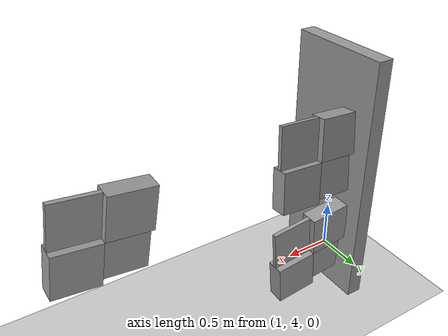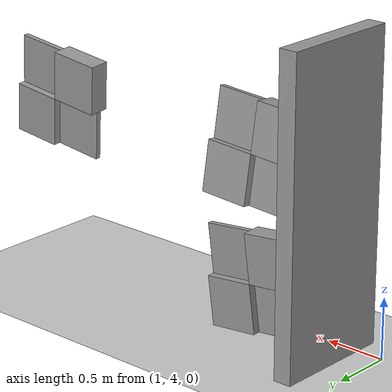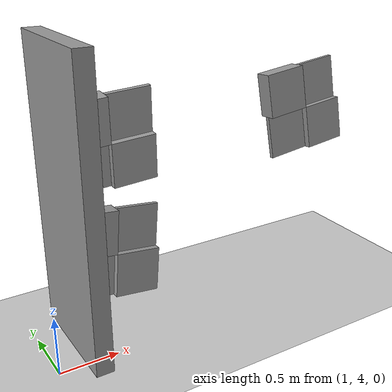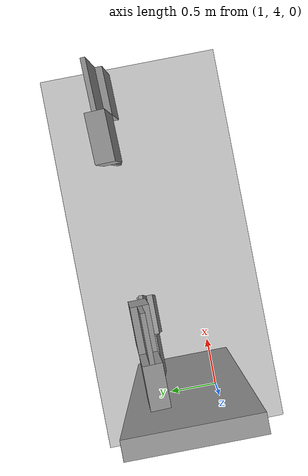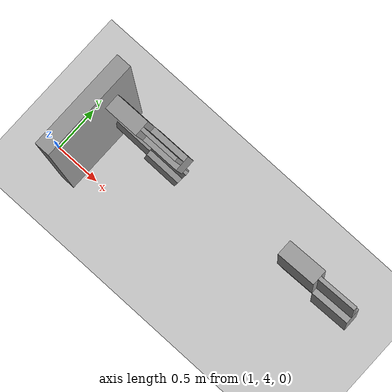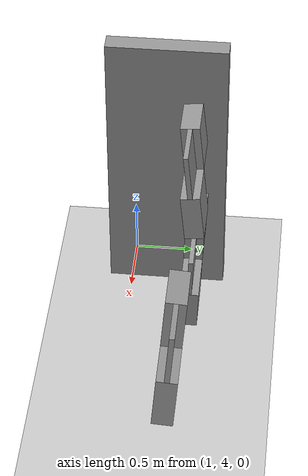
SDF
<sdf version="1.7">
 <world name="default">
  <model name="demo_clean">
   <static>1</static>
   <link name="Wall_25">
    <collision name="Wall_25_Collision">
     <geometry><box><size>1 0.15 2.5</size></box></geometry>
     <pose>0 0 1.25 0 -0 0</pose>
     <surface>
      <friction>
       <ode><mu>1</mu><mu2>1</mu2><fdir1>0 0 0</fdir1><slip1>0</slip1><slip2>0</slip2></ode>
       <torsional>
        <coefficient>1</coefficient>
        <patch_radius>0</patch_radius>
        <surface_radius>0</surface_radius>
        <use_patch_radius>1</use_patch_radius>
        <ode><slip>0</slip></ode>
       </torsional>
      </friction>
      <bounce><restitution_coefficient>0</restitution_coefficient><threshold>1e+06</threshold></bounce>
      <contact>
       <collide_without_contact>0</collide_without_contact>
       <collide_without_contact_bitmask>1</collide_without_contact_bitmask>
       <collide_bitmask>1</collide_bitmask>
       <ode>
        <soft_cfm>0</soft_cfm>
        <soft_erp>0.2</soft_erp>
        <kp>1e+13</kp>
        <kd>1</kd>
        <max_vel>0.01</max_vel>
        <min_depth>0</min_depth>
       </ode>
       <bullet>
        <split_impulse>1</split_impulse>
        <split_impulse_penetration_threshold>-0.01</split_impulse_penetration_threshold>
        <soft_cfm>0</soft_cfm>
        <soft_erp>0.2</soft_erp>
        <kp>1e+13</kp>
        <kd>1</kd>
       </bullet>
      </contact>
     </surface>
    </collision>
    <visual name="Wall_25_Visual">
     <geometry><box><size>1 0.15 2.5</size></box></geometry>
     <material>
      <script><name>Gazebo/Grey</name><uri>file://media/materials/scripts/gazebo.material</uri></script>
      <ambient>1 1 1 1</ambient>
      <shader type="pixel"><normal_map>default</normal_map></shader>
     </material>
     <pose>0 0 1.25 0 -0 0</pose>
    </visual>
    <pose>1.30015 4.30512 0 0 0 -1.5708</pose>
   </link>
  </model>
  <model name="ground_plane">
   <static>1</static>
   <link name="link">
    <collision name="collision">
     <geometry><plane><normal>0 0 1</normal><size>100 100</size></plane></geometry>
     <surface>
      <contact><collide_bitmask>65535</collide_bitmask></contact>
      <friction><ode><mu>100</mu><mu2>50</mu2></ode></friction>
     </surface>
    </collision>
    <visual name="visual">
     <cast_shadows>0</cast_shadows>
     <geometry><plane><normal>0 0 1</normal><size>100 100</size></plane></geometry>
     <material>
      <script><uri>file://media/materials/scripts/gazebo.material</uri><name>Gazebo/Grey</name></script>
     </material>
    </visual>
   </link>
  </model>
  <model name="wall_slate_51">
   <static>1</static>
   <link name="link_0">
    <inertial><mass>1</mass></inertial>
    <gravity>0</gravity>
    <visual name="visual">
     <pose>0 0.2 0.2 0 -0 0</pose>
     <geometry><box><size>0.16 0.4 0.4</size></box></geometry>
     <material>
      <lighting>1</lighting>
      <script><uri>file://media/materials/scripts/gazebo.material</uri><name>Gazebo/Grey</name></script>
      <shader type="pixel"><normal_map>__default__</normal_map></shader>
      <ambient>0.3 0.3 0.3 1</ambient>
      <diffuse>0.7 0.7 0.7 1</diffuse>
      <specular>0.01 0.01 0.01 1</specular>
      <emissive>0 0 0 1</emissive>
     </material>
    </visual>
    <visual name="ModelPreview_0::link_0::visual_1">
     <pose>0 0.2 -0.2 0 -0 0</pose>
     <geometry><box><size>0.04 0.4 0.4</size></box></geometry>
     <material>
      <lighting>1</lighting>
      <script><uri>file://media/materials/scripts/gazebo.material</uri><name>Gazebo/Grey</name></script>
      <shader type="pixel"><normal_map>__default__</normal_map></shader>
      <ambient>0.3 0.3 0.3 1</ambient>
      <diffuse>0.7 0.7 0.7 1</diffuse>
      <specular>0.01 0.01 0.01 1</specular>
      <emissive>0 0 0 1</emissive>
     </material>
    </visual>
    <visual name="ModelPreview_0::link_0::visual_2">
     <pose>0 -0.2 0.2 0 -0 0</pose>
     <geometry><box><size>0.04 0.4 0.4</size></box></geometry>
     <material>
      <lighting>1</lighting>
      <script><uri>file://media/materials/scripts/gazebo.material</uri><name>Gazebo/Grey</name></script>
      <shader type="pixel"><normal_map>__default__</normal_map></shader>
      <ambient>0.3 0.3 0.3 1</ambient>
      <diffuse>0.7 0.7 0.7 1</diffuse>
      <specular>0.01 0.01 0.01 1</specular>
      <emissive>0 0 0 1</emissive>
     </material>
    </visual>
    <visual name="ModelPreview_0::link_0::visual_3">
     <pose>0 -0.2 -0.2 0 -0 0</pose>
     <geometry><box><size>0.16 0.4 0.4</size></box></geometry>
     <material>
      <lighting>1</lighting>
      <script><uri>file://media/materials/scripts/gazebo.material</uri><name>Gazebo/Grey</name></script>
      <shader type="pixel"><normal_map>__default__</normal_map></shader>
      <ambient>0.3 0.3 0.3 1</ambient>
      <diffuse>0.7 0.7 0.7 1</diffuse>
      <specular>0.01 0.01 0.01 1</specular>
      <emissive>0 0 0 1</emissive>
     </material>
    </visual>
    <collision name="collision_2">
     <pose>0 -0.2 0.2 0 -0 0</pose>
     <geometry><box><size>0.04 0.4 0.4</size></box></geometry>
     <surface>
      <friction>
       <ode><mu>1</mu><mu2>1</mu2><fdir1>0 0 0</fdir1><slip1>0</slip1><slip2>0</slip2></ode>
       <torsional>
        <coefficient>1</coefficient>
        <patch_radius>0</patch_radius>
        <surface_radius>0</surface_radius>
        <use_patch_radius>1</use_patch_radius>
        <ode><slip>0</slip></ode>
       </torsional>
      </friction>
      <bounce><restitution_coefficient>0</restitution_coefficient><threshold>1e+06</threshold></bounce>
      <contact>
       <collide_without_contact>0</collide_without_contact>
       <collide_without_contact_bitmask>1</collide_without_contact_bitmask>
       <collide_bitmask>1</collide_bitmask>
       <ode>
        <soft_cfm>0</soft_cfm>
        <soft_erp>0.2</soft_erp>
        <kp>1e+13</kp>
        <kd>1</kd>
        <max_vel>0.01</max_vel>
        <min_depth>0</min_depth>
       </ode>
       <bullet>
        <split_impulse>1</split_impulse>
        <split_impulse_penetration_threshold>-0.01</split_impulse_penetration_threshold>
        <soft_cfm>0</soft_cfm>
        <soft_erp>0.2</soft_erp>
        <kp>1e+13</kp>
        <kd>1</kd>
       </bullet>
      </contact>
     </surface>
    </collision>
    <collision name="collision_1">
     <pose>0 0.2 -0.2 0 -0 0</pose>
     <geometry><box><size>0.04 0.4 0.4</size></box></geometry>
     <surface>
      <friction>
       <ode><mu>1</mu><mu2>1</mu2><fdir1>0 0 0</fdir1><slip1>0</slip1><slip2>0</slip2></ode>
       <torsional>
        <coefficient>1</coefficient>
        <patch_radius>0</patch_radius>
        <surface_radius>0</surface_radius>
        <use_patch_radius>1</use_patch_radius>
        <ode><slip>0</slip></ode>
       </torsional>
      </friction>
      <bounce><restitution_coefficient>0</restitution_coefficient><threshold>1e+06</threshold></bounce>
      <contact>
       <collide_without_contact>0</collide_without_contact>
       <collide_without_contact_bitmask>1</collide_without_contact_bitmask>
       <collide_bitmask>1</collide_bitmask>
       <ode>
        <soft_cfm>0</soft_cfm>
        <soft_erp>0.2</soft_erp>
        <kp>1e+13</kp>
        <kd>1</kd>
        <max_vel>0.01</max_vel>
        <min_depth>0</min_depth>
       </ode>
       <bullet>
        <split_impulse>1</split_impulse>
        <split_impulse_penetration_threshold>-0.01</split_impulse_penetration_threshold>
        <soft_cfm>0</soft_cfm>
        <soft_erp>0.2</soft_erp>
        <kp>1e+13</kp>
        <kd>1</kd>
       </bullet>
      </contact>
     </surface>
    </collision>
    <collision name="collision_4">
     <pose>0 0.2 0.2 0 -0 0</pose>
     <geometry><box><size>0.16 0.4 0.4</size></box></geometry>
     <surface>
      <friction>
       <ode><mu>1</mu><mu2>1</mu2><fdir1>0 0 0</fdir1><slip1>0</slip1><slip2>0</slip2></ode>
       <torsional>
        <coefficient>1</coefficient>
        <patch_radius>0</patch_radius>
        <surface_radius>0</surface_radius>
        <use_patch_radius>1</use_patch_radius>
        <ode><slip>0</slip></ode>
       </torsional>
      </friction>
      <bounce><restitution_coefficient>0</restitution_coefficient><threshold>1e+06</threshold></bounce>
      <contact>
       <collide_without_contact>0</collide_without_contact>
       <collide_without_contact_bitmask>1</collide_without_contact_bitmask>
       <collide_bitmask>1</collide_bitmask>
       <ode>
        <soft_cfm>0</soft_cfm>
        <soft_erp>0.2</soft_erp>
        <kp>1e+13</kp>
        <kd>1</kd>
        <max_vel>0.01</max_vel>
        <min_depth>0</min_depth>
       </ode>
       <bullet>
        <split_impulse>1</split_impulse>
        <split_impulse_penetration_threshold>-0.01</split_impulse_penetration_threshold>
        <soft_cfm>0</soft_cfm>
        <soft_erp>0.2</soft_erp>
        <kp>1e+13</kp>
        <kd>1</kd>
       </bullet>
      </contact>
     </surface>
    </collision>
    <collision name="collision_3">
     <pose>0 -0.2 -0.2 0 -0 0</pose>
     <geometry><box><size>0.16 0.4 0.4</size></box></geometry>
     <surface>
      <friction>
       <ode><mu>1</mu><mu2>1</mu2><fdir1>0 0 0</fdir1><slip1>0</slip1><slip2>0</slip2></ode>
       <torsional>
        <coefficient>1</coefficient>
        <patch_radius>0</patch_radius>
        <surface_radius>0</surface_radius>
        <use_patch_radius>1</use_patch_radius>
        <ode><slip>0</slip></ode>
       </torsional>
      </friction>
      <bounce><restitution_coefficient>0</restitution_coefficient><threshold>1e+06</threshold></bounce>
      <contact>
       <collide_without_contact>0</collide_without_contact>
       <collide_without_contact_bitmask>1</collide_without_contact_bitmask>
       <collide_bitmask>1</collide_bitmask>
       <ode>
        <soft_cfm>0</soft_cfm>
        <soft_erp>0.2</soft_erp>
        <kp>1e+13</kp>
        <kd>1</kd>
        <max_vel>0.01</max_vel>
        <min_depth>0</min_depth>
       </ode>
       <bullet>
        <split_impulse>1</split_impulse>
        <split_impulse_penetration_threshold>-0.01</split_impulse_penetration_threshold>
        <soft_cfm>0</soft_cfm>
        <soft_erp>0.2</soft_erp>
        <kp>1e+13</kp>
        <kd>1</kd>
       </bullet>
      </contact>
     </surface>
    </collision>
   </link>
   <pose>3.75351 4.56618 1.6 -0.12 0.08 1.5757</pose>
  </model>
  <model name="wall_slate_89">
   <static>1</static>
   <link name="link_0">
    <inertial><mass>1</mass></inertial>
    <gravity>0</gravity>
    <visual name="visual">
     <pose>0 0.2 0.2 0 -0 0</pose>
     <geometry><box><size>0.16 0.4 0.4</size></box></geometry>
     <material>
      <lighting>1</lighting>
      <script><uri>file://media/materials/scripts/gazebo.material</uri><name>Gazebo/Grey</name></script>
      <shader type="pixel"><normal_map>__default__</normal_map></shader>
      <ambient>0.3 0.3 0.3 1</ambient>
      <diffuse>0.7 0.7 0.7 1</diffuse>
      <specular>0.01 0.01 0.01 1</specular>
      <emissive>0 0 0 1</emissive>
     </material>
    </visual>
    <visual name="ModelPreview_0::link_0::visual_1">
     <pose>0 0.2 -0.2 0 -0 0</pose>
     <geometry><box><size>0.04 0.4 0.4</size></box></geometry>
     <material>
      <lighting>1</lighting>
      <script><uri>file://media/materials/scripts/gazebo.material</uri><name>Gazebo/Grey</name></script>
      <shader type="pixel"><normal_map>__default__</normal_map></shader>
      <ambient>0.3 0.3 0.3 1</ambient>
      <diffuse>0.7 0.7 0.7 1</diffuse>
      <specular>0.01 0.01 0.01 1</specular>
      <emissive>0 0 0 1</emissive>
     </material>
    </visual>
    <visual name="ModelPreview_0::link_0::visual_2">
     <pose>0 -0.2 0.2 0 -0 0</pose>
     <geometry><box><size>0.04 0.4 0.4</size></box></geometry>
     <material>
      <lighting>1</lighting>
      <script><uri>file://media/materials/scripts/gazebo.material</uri><name>Gazebo/Grey</name></script>
      <shader type="pixel"><normal_map>__default__</normal_map></shader>
      <ambient>0.3 0.3 0.3 1</ambient>
      <diffuse>0.7 0.7 0.7 1</diffuse>
      <specular>0.01 0.01 0.01 1</specular>
      <emissive>0 0 0 1</emissive>
     </material>
    </visual>
    <visual name="ModelPreview_0::link_0::visual_3">
     <pose>0 -0.2 -0.2 0 -0 0</pose>
     <geometry><box><size>0.16 0.4 0.4</size></box></geometry>
     <material>
      <lighting>1</lighting>
      <script><uri>file://media/materials/scripts/gazebo.material</uri><name>Gazebo/Grey</name></script>
      <shader type="pixel"><normal_map>__default__</normal_map></shader>
      <ambient>0.3 0.3 0.3 1</ambient>
      <diffuse>0.7 0.7 0.7 1</diffuse>
      <specular>0.01 0.01 0.01 1</specular>
      <emissive>0 0 0 1</emissive>
     </material>
    </visual>
    <collision name="collision_2">
     <pose>0 -0.2 0.2 0 -0 0</pose>
     <geometry><box><size>0.04 0.4 0.4</size></box></geometry>
     <surface>
      <friction>
       <ode><mu>1</mu><mu2>1</mu2><fdir1>0 0 0</fdir1><slip1>0</slip1><slip2>0</slip2></ode>
       <torsional>
        <coefficient>1</coefficient>
        <patch_radius>0</patch_radius>
        <surface_radius>0</surface_radius>
        <use_patch_radius>1</use_patch_radius>
        <ode><slip>0</slip></ode>
       </torsional>
      </friction>
      <bounce><restitution_coefficient>0</restitution_coefficient><threshold>1e+06</threshold></bounce>
      <contact>
       <collide_without_contact>0</collide_without_contact>
       <collide_without_contact_bitmask>1</collide_without_contact_bitmask>
       <collide_bitmask>1</collide_bitmask>
       <ode>
        <soft_cfm>0</soft_cfm>
        <soft_erp>0.2</soft_erp>
        <kp>1e+13</kp>
        <kd>1</kd>
        <max_vel>0.01</max_vel>
        <min_depth>0</min_depth>
       </ode>
       <bullet>
        <split_impulse>1</split_impulse>
        <split_impulse_penetration_threshold>-0.01</split_impulse_penetration_threshold>
        <soft_cfm>0</soft_cfm>
        <soft_erp>0.2</soft_erp>
        <kp>1e+13</kp>
        <kd>1</kd>
       </bullet>
      </contact>
     </surface>
    </collision>
    <collision name="collision_1">
     <pose>0 0.2 -0.2 0 -0 0</pose>
     <geometry><box><size>0.04 0.4 0.4</size></box></geometry>
     <surface>
      <friction>
       <ode><mu>1</mu><mu2>1</mu2><fdir1>0 0 0</fdir1><slip1>0</slip1><slip2>0</slip2></ode>
       <torsional>
        <coefficient>1</coefficient>
        <patch_radius>0</patch_radius>
        <surface_radius>0</surface_radius>
        <use_patch_radius>1</use_patch_radius>
        <ode><slip>0</slip></ode>
       </torsional>
      </friction>
      <bounce><restitution_coefficient>0</restitution_coefficient><threshold>1e+06</threshold></bounce>
      <contact>
       <collide_without_contact>0</collide_without_contact>
       <collide_without_contact_bitmask>1</collide_without_contact_bitmask>
       <collide_bitmask>1</collide_bitmask>
       <ode>
        <soft_cfm>0</soft_cfm>
        <soft_erp>0.2</soft_erp>
        <kp>1e+13</kp>
        <kd>1</kd>
        <max_vel>0.01</max_vel>
        <min_depth>0</min_depth>
       </ode>
       <bullet>
        <split_impulse>1</split_impulse>
        <split_impulse_penetration_threshold>-0.01</split_impulse_penetration_threshold>
        <soft_cfm>0</soft_cfm>
        <soft_erp>0.2</soft_erp>
        <kp>1e+13</kp>
        <kd>1</kd>
       </bullet>
      </contact>
     </surface>
    </collision>
    <collision name="collision_4">
     <pose>0 0.2 0.2 0 -0 0</pose>
     <geometry><box><size>0.16 0.4 0.4</size></box></geometry>
     <surface>
      <friction>
       <ode><mu>1</mu><mu2>1</mu2><fdir1>0 0 0</fdir1><slip1>0</slip1><slip2>0</slip2></ode>
       <torsional>
        <coefficient>1</coefficient>
        <patch_radius>0</patch_radius>
        <surface_radius>0</surface_radius>
        <use_patch_radius>1</use_patch_radius>
        <ode><slip>0</slip></ode>
       </torsional>
      </friction>
      <bounce><restitution_coefficient>0</restitution_coefficient><threshold>1e+06</threshold></bounce>
      <contact>
       <collide_without_contact>0</collide_without_contact>
       <collide_without_contact_bitmask>1</collide_without_contact_bitmask>
       <collide_bitmask>1</collide_bitmask>
       <ode>
        <soft_cfm>0</soft_cfm>
        <soft_erp>0.2</soft_erp>
        <kp>1e+13</kp>
        <kd>1</kd>
        <max_vel>0.01</max_vel>
        <min_depth>0</min_depth>
       </ode>
       <bullet>
        <split_impulse>1</split_impulse>
        <split_impulse_penetration_threshold>-0.01</split_impulse_penetration_threshold>
        <soft_cfm>0</soft_cfm>
        <soft_erp>0.2</soft_erp>
        <kp>1e+13</kp>
        <kd>1</kd>
       </bullet>
      </contact>
     </surface>
    </collision>
    <collision name="collision_3">
     <pose>0 -0.2 -0.2 0 -0 0</pose>
     <geometry><box><size>0.16 0.4 0.4</size></box></geometry>
     <surface>
      <friction>
       <ode><mu>1</mu><mu2>1</mu2><fdir1>0 0 0</fdir1><slip1>0</slip1><slip2>0</slip2></ode>
       <torsional>
        <coefficient>1</coefficient>
        <patch_radius>0</patch_radius>
        <surface_radius>0</surface_radius>
        <use_patch_radius>1</use_patch_radius>
        <ode><slip>0</slip></ode>
       </torsional>
      </friction>
      <bounce><restitution_coefficient>0</restitution_coefficient><threshold>1e+06</threshold></bounce>
      <contact>
       <collide_without_contact>0</collide_without_contact>
       <collide_without_contact_bitmask>1</collide_without_contact_bitmask>
       <collide_bitmask>1</collide_bitmask>
       <ode>
        <soft_cfm>0</soft_cfm>
        <soft_erp>0.2</soft_erp>
        <kp>1e+13</kp>
        <kd>1</kd>
        <max_vel>0.01</max_vel>
        <min_depth>0</min_depth>
       </ode>
       <bullet>
        <split_impulse>1</split_impulse>
        <split_impulse_penetration_threshold>-0.01</split_impulse_penetration_threshold>
        <soft_cfm>0</soft_cfm>
        <soft_erp>0.2</soft_erp>
        <kp>1e+13</kp>
        <kd>1</kd>
       </bullet>
      </contact>
     </surface>
    </collision>
   </link>
   <pose>1.75351 4.56618 1.6 -0.06 -0.1 1.5757</pose>
  </model>
  <model name="wall_slate_90">
   <static>1</static>
   <link name="link_0">
    <inertial><mass>1</mass></inertial>
    <gravity>0</gravity>
    <visual name="visual">
     <pose>0 0.2 0.2 0 -0 0</pose>
     <geometry><box><size>0.16 0.4 0.4</size></box></geometry>
     <material>
      <lighting>1</lighting>
      <script><uri>file://media/materials/scripts/gazebo.material</uri><name>Gazebo/Grey</name></script>
      <shader type="pixel"><normal_map>__default__</normal_map></shader>
      <ambient>0.3 0.3 0.3 1</ambient>
      <diffuse>0.7 0.7 0.7 1</diffuse>
      <specular>0.01 0.01 0.01 1</specular>
      <emissive>0 0 0 1</emissive>
     </material>
    </visual>
    <visual name="ModelPreview_0::link_0::visual_1">
     <pose>0 0.2 -0.2 0 -0 0</pose>
     <geometry><box><size>0.04 0.4 0.4</size></box></geometry>
     <material>
      <lighting>1</lighting>
      <script><uri>file://media/materials/scripts/gazebo.material</uri><name>Gazebo/Grey</name></script>
      <shader type="pixel"><normal_map>__default__</normal_map></shader>
      <ambient>0.3 0.3 0.3 1</ambient>
      <diffuse>0.7 0.7 0.7 1</diffuse>
      <specular>0.01 0.01 0.01 1</specular>
      <emissive>0 0 0 1</emissive>
     </material>
    </visual>
    <visual name="ModelPreview_0::link_0::visual_2">
     <pose>0 -0.2 0.2 0 -0 0</pose>
     <geometry><box><size>0.04 0.4 0.4</size></box></geometry>
     <material>
      <lighting>1</lighting>
      <script><uri>file://media/materials/scripts/gazebo.material</uri><name>Gazebo/Grey</name></script>
      <shader type="pixel"><normal_map>__default__</normal_map></shader>
      <ambient>0.3 0.3 0.3 1</ambient>
      <diffuse>0.7 0.7 0.7 1</diffuse>
      <specular>0.01 0.01 0.01 1</specular>
      <emissive>0 0 0 1</emissive>
     </material>
    </visual>
    <visual name="ModelPreview_0::link_0::visual_3">
     <pose>0 -0.2 -0.2 0 -0 0</pose>
     <geometry><box><size>0.16 0.4 0.4</size></box></geometry>
     <material>
      <lighting>1</lighting>
      <script><uri>file://media/materials/scripts/gazebo.material</uri><name>Gazebo/Grey</name></script>
      <shader type="pixel"><normal_map>__default__</normal_map></shader>
      <ambient>0.3 0.3 0.3 1</ambient>
      <diffuse>0.7 0.7 0.7 1</diffuse>
      <specular>0.01 0.01 0.01 1</specular>
      <emissive>0 0 0 1</emissive>
     </material>
    </visual>
    <collision name="collision_2">
     <pose>0 -0.2 0.2 0 -0 0</pose>
     <geometry><box><size>0.04 0.4 0.4</size></box></geometry>
     <surface>
      <friction>
       <ode><mu>1</mu><mu2>1</mu2><fdir1>0 0 0</fdir1><slip1>0</slip1><slip2>0</slip2></ode>
       <torsional>
        <coefficient>1</coefficient>
        <patch_radius>0</patch_radius>
        <surface_radius>0</surface_radius>
        <use_patch_radius>1</use_patch_radius>
        <ode><slip>0</slip></ode>
       </torsional>
      </friction>
      <bounce><restitution_coefficient>0</restitution_coefficient><threshold>1e+06</threshold></bounce>
      <contact>
       <collide_without_contact>0</collide_without_contact>
       <collide_without_contact_bitmask>1</collide_without_contact_bitmask>
       <collide_bitmask>1</collide_bitmask>
       <ode>
        <soft_cfm>0</soft_cfm>
        <soft_erp>0.2</soft_erp>
        <kp>1e+13</kp>
        <kd>1</kd>
        <max_vel>0.01</max_vel>
        <min_depth>0</min_depth>
       </ode>
       <bullet>
        <split_impulse>1</split_impulse>
        <split_impulse_penetration_threshold>-0.01</split_impulse_penetration_threshold>
        <soft_cfm>0</soft_cfm>
        <soft_erp>0.2</soft_erp>
        <kp>1e+13</kp>
        <kd>1</kd>
       </bullet>
      </contact>
     </surface>
    </collision>
    <collision name="collision_1">
     <pose>0 0.2 -0.2 0 -0 0</pose>
     <geometry><box><size>0.04 0.4 0.4</size></box></geometry>
     <surface>
      <friction>
       <ode><mu>1</mu><mu2>1</mu2><fdir1>0 0 0</fdir1><slip1>0</slip1><slip2>0</slip2></ode>
       <torsional>
        <coefficient>1</coefficient>
        <patch_radius>0</patch_radius>
        <surface_radius>0</surface_radius>
        <use_patch_radius>1</use_patch_radius>
        <ode><slip>0</slip></ode>
       </torsional>
      </friction>
      <bounce><restitution_coefficient>0</restitution_coefficient><threshold>1e+06</threshold></bounce>
      <contact>
       <collide_without_contact>0</collide_without_contact>
       <collide_without_contact_bitmask>1</collide_without_contact_bitmask>
       <collide_bitmask>1</collide_bitmask>
       <ode>
        <soft_cfm>0</soft_cfm>
        <soft_erp>0.2</soft_erp>
        <kp>1e+13</kp>
        <kd>1</kd>
        <max_vel>0.01</max_vel>
        <min_depth>0</min_depth>
       </ode>
       <bullet>
        <split_impulse>1</split_impulse>
        <split_impulse_penetration_threshold>-0.01</split_impulse_penetration_threshold>
        <soft_cfm>0</soft_cfm>
        <soft_erp>0.2</soft_erp>
        <kp>1e+13</kp>
        <kd>1</kd>
       </bullet>
      </contact>
     </surface>
    </collision>
    <collision name="collision_4">
     <pose>0 0.2 0.2 0 -0 0</pose>
     <geometry><box><size>0.16 0.4 0.4</size></box></geometry>
     <surface>
      <friction>
       <ode><mu>1</mu><mu2>1</mu2><fdir1>0 0 0</fdir1><slip1>0</slip1><slip2>0</slip2></ode>
       <torsional>
        <coefficient>1</coefficient>
        <patch_radius>0</patch_radius>
        <surface_radius>0</surface_radius>
        <use_patch_radius>1</use_patch_radius>
        <ode><slip>0</slip></ode>
       </torsional>
      </friction>
      <bounce><restitution_coefficient>0</restitution_coefficient><threshold>1e+06</threshold></bounce>
      <contact>
       <collide_without_contact>0</collide_without_contact>
       <collide_without_contact_bitmask>1</collide_without_contact_bitmask>
       <collide_bitmask>1</collide_bitmask>
       <ode>
        <soft_cfm>0</soft_cfm>
        <soft_erp>0.2</soft_erp>
        <kp>1e+13</kp>
        <kd>1</kd>
        <max_vel>0.01</max_vel>
        <min_depth>0</min_depth>
       </ode>
       <bullet>
        <split_impulse>1</split_impulse>
        <split_impulse_penetration_threshold>-0.01</split_impulse_penetration_threshold>
        <soft_cfm>0</soft_cfm>
        <soft_erp>0.2</soft_erp>
        <kp>1e+13</kp>
        <kd>1</kd>
       </bullet>
      </contact>
     </surface>
    </collision>
    <collision name="collision_3">
     <pose>0 -0.2 -0.2 0 -0 0</pose>
     <geometry><box><size>0.16 0.4 0.4</size></box></geometry>
     <surface>
      <friction>
       <ode><mu>1</mu><mu2>1</mu2><fdir1>0 0 0</fdir1><slip1>0</slip1><slip2>0</slip2></ode>
       <torsional>
        <coefficient>1</coefficient>
        <patch_radius>0</patch_radius>
        <surface_radius>0</surface_radius>
        <use_patch_radius>1</use_patch_radius>
        <ode><slip>0</slip></ode>
       </torsional>
      </friction>
      <bounce><restitution_coefficient>0</restitution_coefficient><threshold>1e+06</threshold></bounce>
      <contact>
       <collide_without_contact>0</collide_without_contact>
       <collide_without_contact_bitmask>1</collide_without_contact_bitmask>
       <collide_bitmask>1</collide_bitmask>
       <ode>
        <soft_cfm>0</soft_cfm>
        <soft_erp>0.2</soft_erp>
        <kp>1e+13</kp>
        <kd>1</kd>
        <max_vel>0.01</max_vel>
        <min_depth>0</min_depth>
       </ode>
       <bullet>
        <split_impulse>1</split_impulse>
        <split_impulse_penetration_threshold>-0.01</split_impulse_penetration_threshold>
        <soft_cfm>0</soft_cfm>
        <soft_erp>0.2</soft_erp>
        <kp>1e+13</kp>
        <kd>1</kd>
       </bullet>
      </contact>
     </surface>
    </collision>
   </link>
   <pose>1.75351 4.56618 0.6 0.1 0.04 1.5757</pose>
  </model>
 </world>
</sdf>
